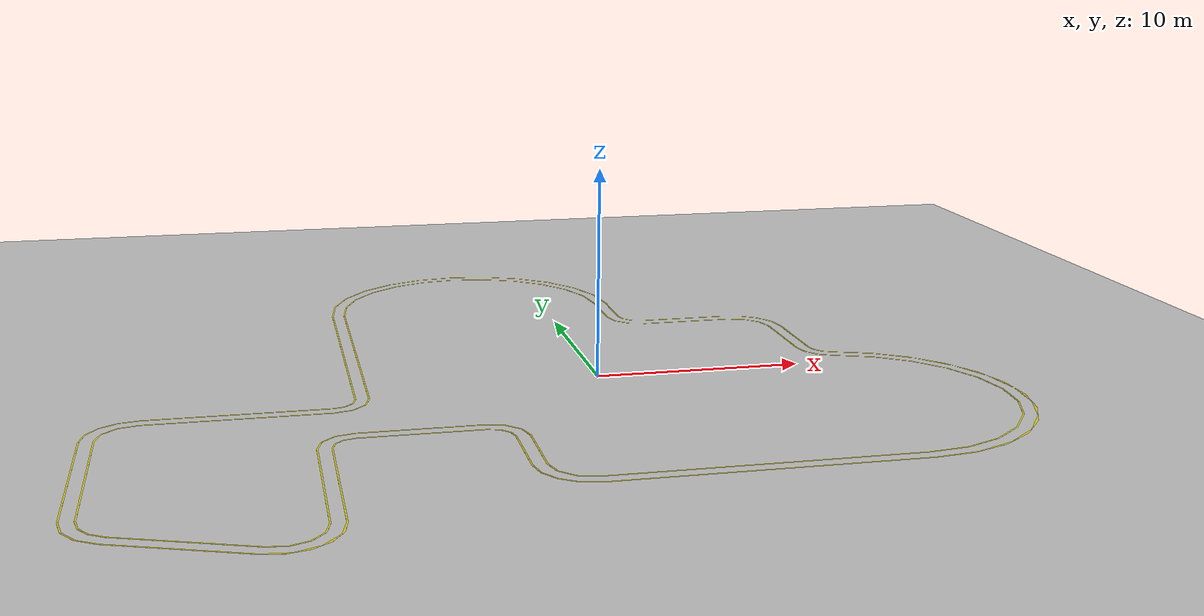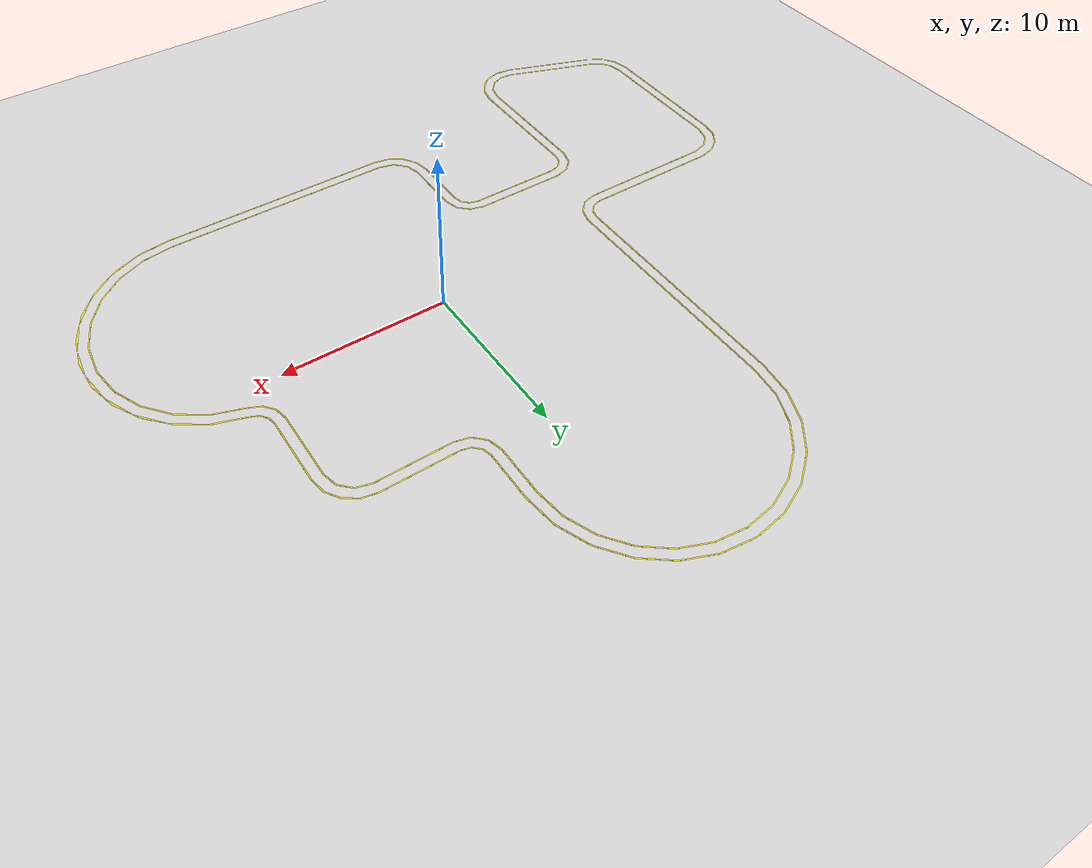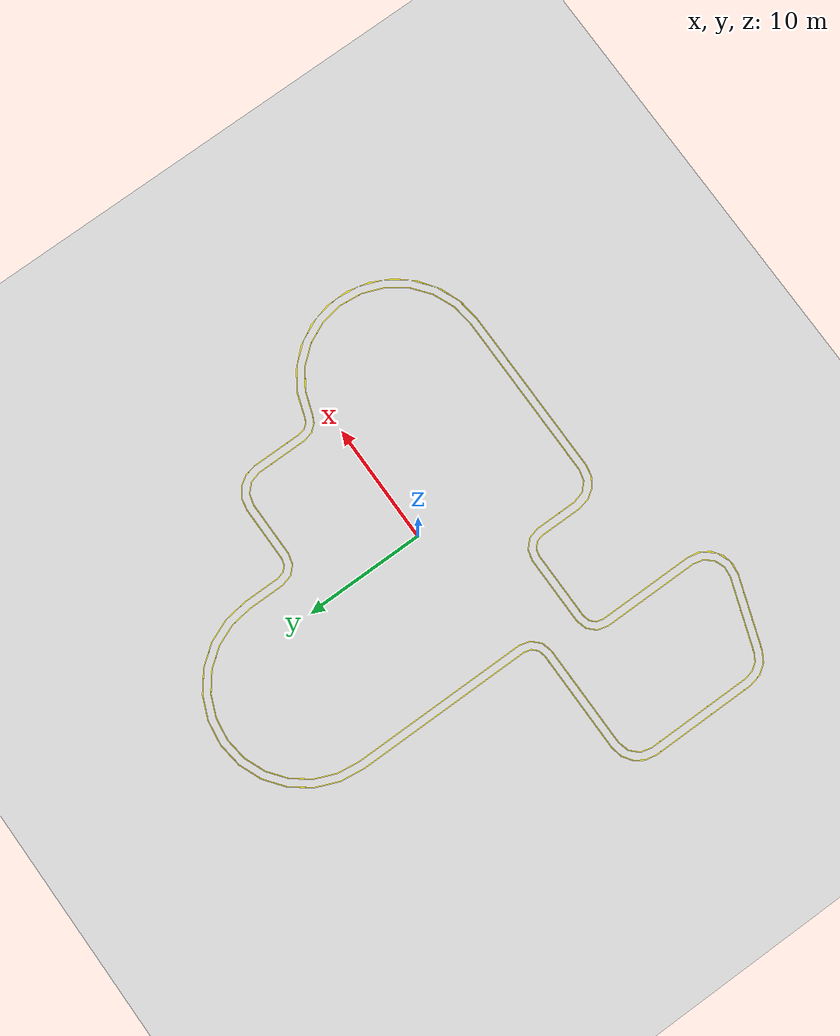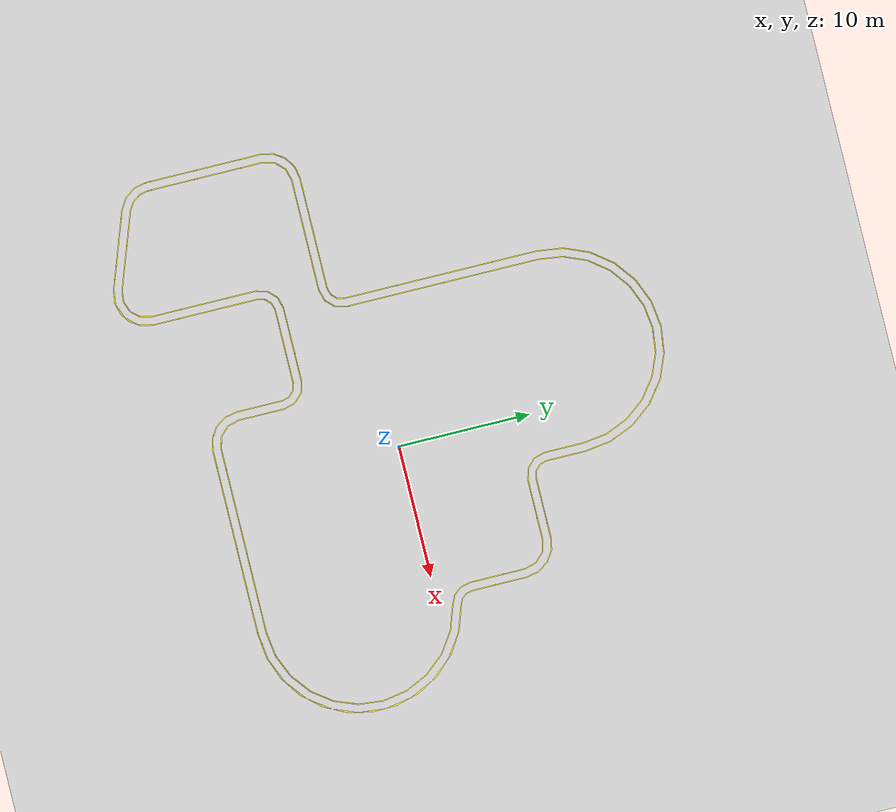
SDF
<sdf version="1.6">
 <world name="default">
  <light name="sun" type="directional">
   <pose>0 0 10 0 -0 0</pose>
   <diffuse>0.8 0.8 0.8 1</diffuse>
   <specular>0.2 0.2 0.2 1</specular>
   <attenuation>
    <range>1000</range>
    <constant>0.9</constant>
    <linear>0.01</linear>
    <quadratic>0.001</quadratic>
   </attenuation>
   <direction>-0.5 0.1 -0.9</direction>
  </light>
  <model name="ground_plane">
   <static>1</static>
   <link name="link">
    <collision name="collision">
     <geometry><plane><normal>0 0 1</normal><size>100 100</size></plane></geometry>
     <surface>
      <contact><collide_bitmask>65535</collide_bitmask></contact>
      <friction><ode><mu>100</mu><mu2>50</mu2></ode></friction>
     </surface>
    </collision>
    <visual name="visual">
     <cast_shadows>0</cast_shadows>
     <geometry><plane><normal>0 0 1</normal><size>100 100</size></plane></geometry>
     <material>
      <script><uri>file://media/materials/scripts/gazebo.material</uri><name>Gazebo/Grey</name></script>
     </material>
    </visual>
   </link>
  </model>
  <gravity>0 0 -9.8</gravity>
  <magnetic_field>6e-06 2.3e-05 -4.2e-05</magnetic_field>
  <atmosphere type="adiabatic"/>
  <physics name="default_physics" default="0" type="ode">
   <max_step_size>0.001</max_step_size>
   <real_time_factor>1</real_time_factor>
   <real_time_update_rate>1000</real_time_update_rate>
  </physics>
  <scene><ambient>0.4 0.4 0.4 1</ambient><background>0.7 0.7 0.7 1</background><shadows>1</shadows></scene>
  <audio><device>default</device></audio>
  <spherical_coordinates>
   <surface_model>EARTH_WGS84</surface_model>
   <latitude_deg>0</latitude_deg>
   <longitude_deg>0</longitude_deg>
   <elevation>0</elevation>
   <heading_deg>0</heading_deg>
  </spherical_coordinates>
  <model name="track1">
   <link name="link_1">
    <pose>-0 -3e-06 0 0 -0 0</pose>
    <visual name="visual">
     <geometry>
      <mesh><uri>/home/rg28/jetbot_ws/src/jetbot_sim/world/Part1.stl</uri><scale>0.35 0.35 1</scale></mesh>
     </geometry>
     <material>
      <lighting>1</lighting>
      <script><uri>file://media/materials/scripts/gazebo.material</uri><name>Gazebo/Yellow</name></script>
     </material>
    </visual>
    <collision name="collision">
     <geometry>
      <mesh><uri>/home/rg28/jetbot_ws/src/jetbot_sim/world/Part1.stl</uri><scale>0.35 0.35 1</scale></mesh>
     </geometry>
     <surface>
      <friction>
       <ode><mu>1</mu><mu2>1</mu2><fdir1>0 0 0</fdir1><slip1>0</slip1><slip2>0</slip2></ode>
       <torsional>
        <coefficient>1</coefficient>
        <patch_radius>0</patch_radius>
        <surface_radius>0</surface_radius>
        <use_patch_radius>1</use_patch_radius>
        <ode><slip>0</slip></ode>
       </torsional>
      </friction>
      <bounce><restitution_coefficient>0</restitution_coefficient><threshold>1e+06</threshold></bounce>
      <contact>
       <collide_without_contact>0</collide_without_contact>
       <collide_without_contact_bitmask>1</collide_without_contact_bitmask>
       <collide_bitmask>1</collide_bitmask>
       <ode>
        <soft_cfm>0</soft_cfm>
        <soft_erp>0.2</soft_erp>
        <kp>1e+13</kp>
        <kd>1</kd>
        <max_vel>0.01</max_vel>
        <min_depth>0</min_depth>
       </ode>
       <bullet>
        <split_impulse>1</split_impulse>
        <split_impulse_penetration_threshold>-0.01</split_impulse_penetration_threshold>
        <soft_cfm>0</soft_cfm>
        <soft_erp>0.2</soft_erp>
        <kp>1e+13</kp>
        <kd>1</kd>
       </bullet>
      </contact>
     </surface>
    </collision>
    <inertial>
     <inertia><ixx>1</ixx><ixy>0</ixy><ixz>0</ixz><iyy>1</iyy><iyz>0</iyz><izz>1</izz></inertia>
     <mass>1</mass>
    </inertial>
   </link>
   <static>0</static>
   <pose>-1.9237 -3.04978 -0.000238 -0.000164 -3.3e-05 -2.8e-05</pose>
  </model>
 </world>
</sdf>
